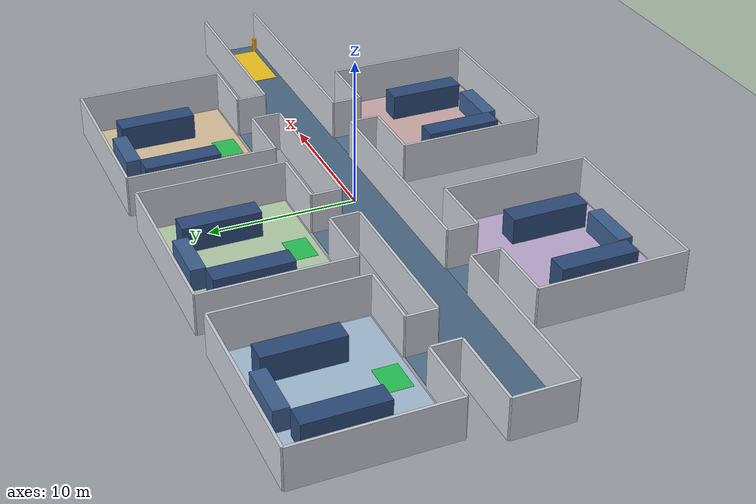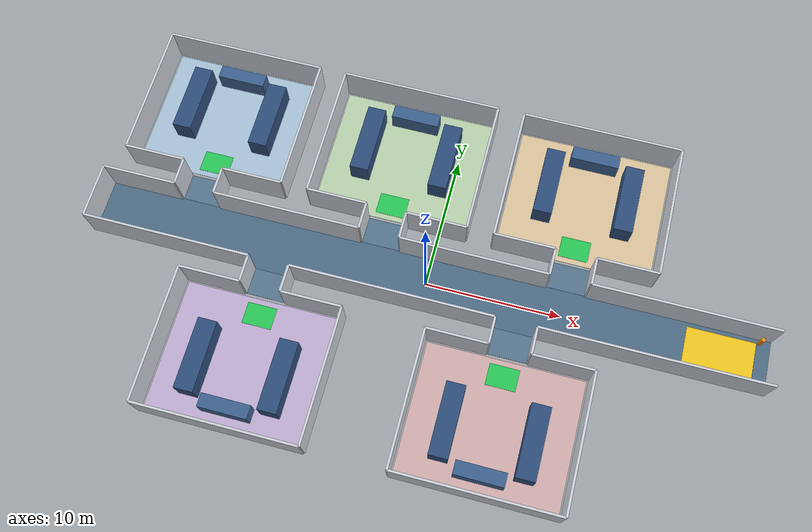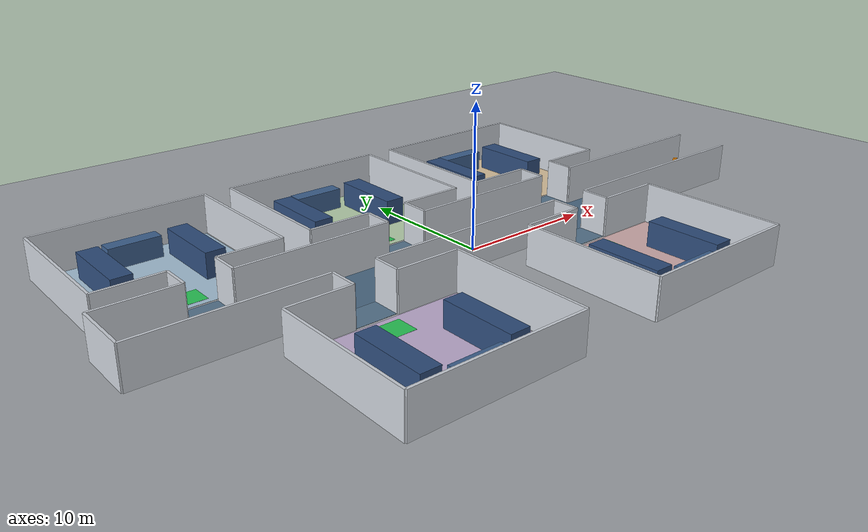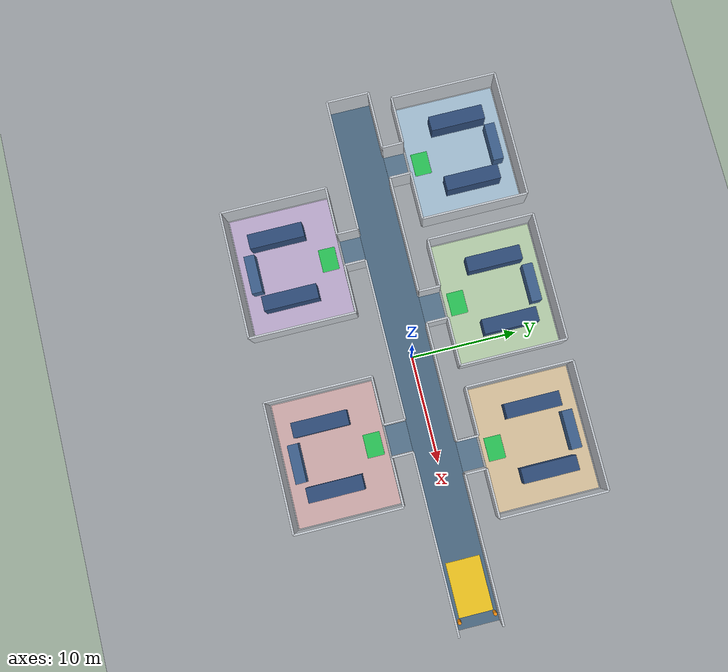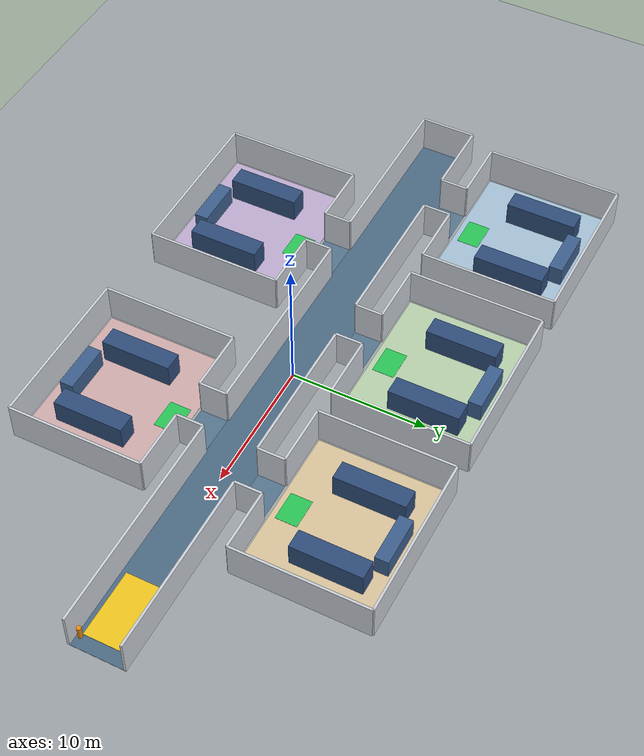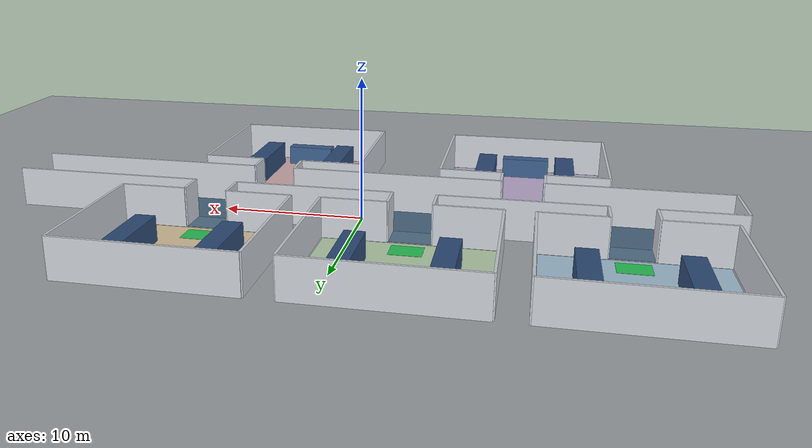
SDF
<sdf version="1.10">
 <world name="warehouse_5_rooms">
  <physics name="1ms" type="ignored">
   <max_step_size>0.001</max_step_size>
   <real_time_factor>1</real_time_factor>
   <real_time_update_rate>1000</real_time_update_rate>
  </physics>
  <plugin name="gz::sim::systems::Physics" filename="gz-sim-physics-system"/>
  <plugin name="gz::sim::systems::UserCommands" filename="gz-sim-user-commands-system"/>
  <plugin name="gz::sim::systems::SceneBroadcaster" filename="gz-sim-scene-broadcaster-system"/>
  <plugin name="gz::sim::systems::Contact" filename="gz-sim-contact-system"/>
  <plugin name="gz::sim::systems::Sensors" filename="gz-sim-sensors-system">
   <render_engine>ogre2</render_engine>
  </plugin>
  <plugin name="gz::sim::systems::Imu" filename="gz-sim-imu-system"/>
  <gravity>0 0 -9.8</gravity>
  <magnetic_field>5.5645e-06 2.28758e-05 -4.23884e-05</magnetic_field>
  <atmosphere type="adiabatic"/>
  <scene>
   <ambient>0.45 0.45 0.45 1</ambient>
   <background>0.72 0.74 0.78 1</background>
   <shadows>true</shadows>
  </scene>
  <model name="ground_plane">
   <static>true</static>
   <link name="link">
    <collision name="collision">
     <geometry><plane><normal>0 0 1</normal><size>80 50</size></plane></geometry>
     <surface><friction><ode><mu>50</mu><mu2>50</mu2></ode></friction></surface>
    </collision>
    <visual name="visual">
     <geometry><plane><normal>0 0 1</normal><size>80 50</size></plane></geometry>
     <material><ambient>0.58 0.60 0.62 1</ambient><diffuse>0.62 0.64 0.66 1</diffuse></material>
    </visual>
   </link>
  </model>
  <model name="warehouse_floor_zones">
   <static>true</static>
   <link name="floor_zones_link">
    <visual name="main_corridor_floor_visual">
     <pose>0.0000 0.0000 0.0150 0 0 0</pose>
     <geometry><box><size>50.0000 4.0000 0.0200</size></box></geometry>
     <material><ambient>0.30 0.42 0.52 1</ambient><diffuse>0.30 0.42 0.52 1</diffuse></material>
    </visual>
    <visual name="room_1_floor_visual">
     <pose>-18.0000 9.0000 0.0150 0 0 0</pose>
     <geometry><box><size>11.6000 9.6000 0.0200</size></box></geometry>
     <material><ambient>0.65 0.76 0.84 1</ambient><diffuse>0.65 0.76 0.84 1</diffuse></material>
    </visual>
    <visual name="room_1_branch_floor_visual">
     <pose>-18.0000 3.0000 0.0170 0 0 0</pose>
     <geometry><box><size>3.0000 2.0000 0.0240</size></box></geometry>
     <material><ambient>0.34 0.46 0.56 1</ambient><diffuse>0.34 0.46 0.56 1</diffuse></material>
    </visual>
    <visual name="room_1_goal_zone_visual">
     <pose>-18.0000 5.4000 0.0250 0 0 0</pose>
     <geometry><box><size>2.2000 1.6000 0.0350</size></box></geometry>
     <material><ambient>0.16 0.78 0.34 1</ambient><diffuse>0.16 0.78 0.34 1</diffuse></material>
    </visual>
    <visual name="room_2_floor_visual">
     <pose>-4.0000 9.0000 0.0150 0 0 0</pose>
     <geometry><box><size>11.6000 9.6000 0.0200</size></box></geometry>
     <material><ambient>0.72 0.82 0.68 1</ambient><diffuse>0.72 0.82 0.68 1</diffuse></material>
    </visual>
    <visual name="room_2_branch_floor_visual">
     <pose>-4.0000 3.0000 0.0170 0 0 0</pose>
     <geometry><box><size>3.0000 2.0000 0.0240</size></box></geometry>
     <material><ambient>0.34 0.46 0.56 1</ambient><diffuse>0.34 0.46 0.56 1</diffuse></material>
    </visual>
    <visual name="room_2_goal_zone_visual">
     <pose>-4.0000 5.4000 0.0250 0 0 0</pose>
     <geometry><box><size>2.2000 1.6000 0.0350</size></box></geometry>
     <material><ambient>0.16 0.78 0.34 1</ambient><diffuse>0.16 0.78 0.34 1</diffuse></material>
    </visual>
    <visual name="room_3_floor_visual">
     <pose>10.0000 9.0000 0.0150 0 0 0</pose>
     <geometry><box><size>11.6000 9.6000 0.0200</size></box></geometry>
     <material><ambient>0.86 0.77 0.62 1</ambient><diffuse>0.86 0.77 0.62 1</diffuse></material>
    </visual>
    <visual name="room_3_branch_floor_visual">
     <pose>10.0000 3.0000 0.0170 0 0 0</pose>
     <geometry><box><size>3.0000 2.0000 0.0240</size></box></geometry>
     <material><ambient>0.34 0.46 0.56 1</ambient><diffuse>0.34 0.46 0.56 1</diffuse></material>
    </visual>
    <visual name="room_3_goal_zone_visual">
     <pose>10.0000 5.4000 0.0250 0 0 0</pose>
     <geometry><box><size>2.2000 1.6000 0.0350</size></box></geometry>
     <material><ambient>0.16 0.78 0.34 1</ambient><diffuse>0.16 0.78 0.34 1</diffuse></material>
    </visual>
    <visual name="room_4_floor_visual">
     <pose>-11.0000 -9.0000 0.0150 0 0 0</pose>
     <geometry><box><size>11.6000 9.6000 0.0200</size></box></geometry>
     <material><ambient>0.75 0.68 0.82 1</ambient><diffuse>0.75 0.68 0.82 1</diffuse></material>
    </visual>
    <visual name="room_4_branch_floor_visual">
     <pose>-11.0000 -3.0000 0.0170 0 0 0</pose>
     <geometry><box><size>3.0000 2.0000 0.0240</size></box></geometry>
     <material><ambient>0.34 0.46 0.56 1</ambient><diffuse>0.34 0.46 0.56 1</diffuse></material>
    </visual>
    <visual name="room_4_goal_zone_visual">
     <pose>-11.0000 -5.4000 0.0250 0 0 0</pose>
     <geometry><box><size>2.2000 1.6000 0.0350</size></box></geometry>
     <material><ambient>0.16 0.78 0.34 1</ambient><diffuse>0.16 0.78 0.34 1</diffuse></material>
    </visual>
    <visual name="room_5_floor_visual">
     <pose>7.0000 -9.0000 0.0150 0 0 0</pose>
     <geometry><box><size>11.6000 9.6000 0.0200</size></box></geometry>
     <material><ambient>0.82 0.68 0.68 1</ambient><diffuse>0.82 0.68 0.68 1</diffuse></material>
    </visual>
    <visual name="room_5_branch_floor_visual">
     <pose>7.0000 -3.0000 0.0170 0 0 0</pose>
     <geometry><box><size>3.0000 2.0000 0.0240</size></box></geometry>
     <material><ambient>0.34 0.46 0.56 1</ambient><diffuse>0.34 0.46 0.56 1</diffuse></material>
    </visual>
    <visual name="room_5_goal_zone_visual">
     <pose>7.0000 -5.4000 0.0250 0 0 0</pose>
     <geometry><box><size>2.2000 1.6000 0.0350</size></box></geometry>
     <material><ambient>0.16 0.78 0.34 1</ambient><diffuse>0.16 0.78 0.34 1</diffuse></material>
    </visual>
    <visual name="agv_start_zone_visual">
     <pose>21.5000 0.0000 0.0260 0 0 0</pose>
     <geometry><box><size>5.0000 3.2000 0.0400</size></box></geometry>
     <material><ambient>0.95 0.78 0.12 1</ambient><diffuse>0.95 0.78 0.12 1</diffuse></material>
    </visual>
   </link>
  </model>
  <model name="warehouse_structure">
   <static>true</static>
   <link name="walls_link">
    <collision name="corridor_north_1_collision">
     <pose>-22.2500 2.0000 1.4000 0 0 0</pose>
     <geometry><box><size>5.5000 0.1800 2.8000</size></box></geometry>
    </collision>
    <visual name="corridor_north_1_visual">
     <pose>-22.2500 2.0000 1.4000 0 0 0</pose>
     <geometry><box><size>5.5000 0.1800 2.8000</size></box></geometry>
     <material><ambient>0.80 0.82 0.85 1</ambient><diffuse>0.80 0.82 0.85 1</diffuse></material>
    </visual>
    <collision name="corridor_north_2_collision">
     <pose>-11.0000 2.0000 1.4000 0 0 0</pose>
     <geometry><box><size>11.0000 0.1800 2.8000</size></box></geometry>
    </collision>
    <visual name="corridor_north_2_visual">
     <pose>-11.0000 2.0000 1.4000 0 0 0</pose>
     <geometry><box><size>11.0000 0.1800 2.8000</size></box></geometry>
     <material><ambient>0.80 0.82 0.85 1</ambient><diffuse>0.80 0.82 0.85 1</diffuse></material>
    </visual>
    <collision name="corridor_north_3_collision">
     <pose>3.0000 2.0000 1.4000 0 0 0</pose>
     <geometry><box><size>11.0000 0.1800 2.8000</size></box></geometry>
    </collision>
    <visual name="corridor_north_3_visual">
     <pose>3.0000 2.0000 1.4000 0 0 0</pose>
     <geometry><box><size>11.0000 0.1800 2.8000</size></box></geometry>
     <material><ambient>0.80 0.82 0.85 1</ambient><diffuse>0.80 0.82 0.85 1</diffuse></material>
    </visual>
    <collision name="corridor_north_4_collision">
     <pose>18.2500 2.0000 1.4000 0 0 0</pose>
     <geometry><box><size>13.5000 0.1800 2.8000</size></box></geometry>
    </collision>
    <visual name="corridor_north_4_visual">
     <pose>18.2500 2.0000 1.4000 0 0 0</pose>
     <geometry><box><size>13.5000 0.1800 2.8000</size></box></geometry>
     <material><ambient>0.80 0.82 0.85 1</ambient><diffuse>0.80 0.82 0.85 1</diffuse></material>
    </visual>
    <collision name="corridor_south_1_collision">
     <pose>-18.7500 -2.0000 1.4000 0 0 0</pose>
     <geometry><box><size>12.5000 0.1800 2.8000</size></box></geometry>
    </collision>
    <visual name="corridor_south_1_visual">
     <pose>-18.7500 -2.0000 1.4000 0 0 0</pose>
     <geometry><box><size>12.5000 0.1800 2.8000</size></box></geometry>
     <material><ambient>0.80 0.82 0.85 1</ambient><diffuse>0.80 0.82 0.85 1</diffuse></material>
    </visual>
    <collision name="corridor_south_2_collision">
     <pose>-2.0000 -2.0000 1.4000 0 0 0</pose>
     <geometry><box><size>15.0000 0.1800 2.8000</size></box></geometry>
    </collision>
    <visual name="corridor_south_2_visual">
     <pose>-2.0000 -2.0000 1.4000 0 0 0</pose>
     <geometry><box><size>15.0000 0.1800 2.8000</size></box></geometry>
     <material><ambient>0.80 0.82 0.85 1</ambient><diffuse>0.80 0.82 0.85 1</diffuse></material>
    </visual>
    <collision name="corridor_south_3_collision">
     <pose>16.7500 -2.0000 1.4000 0 0 0</pose>
     <geometry><box><size>16.5000 0.1800 2.8000</size></box></geometry>
    </collision>
    <visual name="corridor_south_3_visual">
     <pose>16.7500 -2.0000 1.4000 0 0 0</pose>
     <geometry><box><size>16.5000 0.1800 2.8000</size></box></geometry>
     <material><ambient>0.80 0.82 0.85 1</ambient><diffuse>0.80 0.82 0.85 1</diffuse></material>
    </visual>
    <collision name="corridor_west_end_collision">
     <pose>-25.0000 0.0000 1.4000 0 0 0</pose>
     <geometry><box><size>0.1800 4.0000 2.8000</size></box></geometry>
    </collision>
    <visual name="corridor_west_end_visual">
     <pose>-25.0000 0.0000 1.4000 0 0 0</pose>
     <geometry><box><size>0.1800 4.0000 2.8000</size></box></geometry>
     <material><ambient>0.80 0.82 0.85 1</ambient><diffuse>0.80 0.82 0.85 1</diffuse></material>
    </visual>
    <collision name="room_1_west_collision">
     <pose>-24.0000 9.0000 1.4000 0 0 0</pose>
     <geometry><box><size>0.1800 10.0000 2.8000</size></box></geometry>
    </collision>
    <visual name="room_1_west_visual">
     <pose>-24.0000 9.0000 1.4000 0 0 0</pose>
     <geometry><box><size>0.1800 10.0000 2.8000</size></box></geometry>
     <material><ambient>0.80 0.82 0.85 1</ambient><diffuse>0.80 0.82 0.85 1</diffuse></material>
    </visual>
    <collision name="room_1_east_collision">
     <pose>-12.0000 9.0000 1.4000 0 0 0</pose>
     <geometry><box><size>0.1800 10.0000 2.8000</size></box></geometry>
    </collision>
    <visual name="room_1_east_visual">
     <pose>-12.0000 9.0000 1.4000 0 0 0</pose>
     <geometry><box><size>0.1800 10.0000 2.8000</size></box></geometry>
     <material><ambient>0.80 0.82 0.85 1</ambient><diffuse>0.80 0.82 0.85 1</diffuse></material>
    </visual>
    <collision name="room_1_north_collision">
     <pose>-18.0000 14.0000 1.4000 0 0 0</pose>
     <geometry><box><size>12.0000 0.1800 2.8000</size></box></geometry>
    </collision>
    <visual name="room_1_north_visual">
     <pose>-18.0000 14.0000 1.4000 0 0 0</pose>
     <geometry><box><size>12.0000 0.1800 2.8000</size></box></geometry>
     <material><ambient>0.80 0.82 0.85 1</ambient><diffuse>0.80 0.82 0.85 1</diffuse></material>
    </visual>
    <collision name="room_1_south_left_collision">
     <pose>-21.7500 4.0000 1.4000 0 0 0</pose>
     <geometry><box><size>4.5000 0.1800 2.8000</size></box></geometry>
    </collision>
    <visual name="room_1_south_left_visual">
     <pose>-21.7500 4.0000 1.4000 0 0 0</pose>
     <geometry><box><size>4.5000 0.1800 2.8000</size></box></geometry>
     <material><ambient>0.80 0.82 0.85 1</ambient><diffuse>0.80 0.82 0.85 1</diffuse></material>
    </visual>
    <collision name="room_1_south_right_collision">
     <pose>-14.2500 4.0000 1.4000 0 0 0</pose>
     <geometry><box><size>4.5000 0.1800 2.8000</size></box></geometry>
    </collision>
    <visual name="room_1_south_right_visual">
     <pose>-14.2500 4.0000 1.4000 0 0 0</pose>
     <geometry><box><size>4.5000 0.1800 2.8000</size></box></geometry>
     <material><ambient>0.80 0.82 0.85 1</ambient><diffuse>0.80 0.82 0.85 1</diffuse></material>
    </visual>
    <collision name="room_1_branch_west_collision">
     <pose>-19.5000 3.0000 1.4000 0 0 0</pose>
     <geometry><box><size>0.1800 2.0000 2.8000</size></box></geometry>
    </collision>
    <visual name="room_1_branch_west_visual">
     <pose>-19.5000 3.0000 1.4000 0 0 0</pose>
     <geometry><box><size>0.1800 2.0000 2.8000</size></box></geometry>
     <material><ambient>0.80 0.82 0.85 1</ambient><diffuse>0.80 0.82 0.85 1</diffuse></material>
    </visual>
    <collision name="room_1_branch_east_collision">
     <pose>-16.5000 3.0000 1.4000 0 0 0</pose>
     <geometry><box><size>0.1800 2.0000 2.8000</size></box></geometry>
    </collision>
    <visual name="room_1_branch_east_visual">
     <pose>-16.5000 3.0000 1.4000 0 0 0</pose>
     <geometry><box><size>0.1800 2.0000 2.8000</size></box></geometry>
     <material><ambient>0.80 0.82 0.85 1</ambient><diffuse>0.80 0.82 0.85 1</diffuse></material>
    </visual>
    <collision name="room_2_west_collision">
     <pose>-10.0000 9.0000 1.4000 0 0 0</pose>
     <geometry><box><size>0.1800 10.0000 2.8000</size></box></geometry>
    </collision>
    <visual name="room_2_west_visual">
     <pose>-10.0000 9.0000 1.4000 0 0 0</pose>
     <geometry><box><size>0.1800 10.0000 2.8000</size></box></geometry>
     <material><ambient>0.80 0.82 0.85 1</ambient><diffuse>0.80 0.82 0.85 1</diffuse></material>
    </visual>
    <collision name="room_2_east_collision">
     <pose>2.0000 9.0000 1.4000 0 0 0</pose>
     <geometry><box><size>0.1800 10.0000 2.8000</size></box></geometry>
    </collision>
    <visual name="room_2_east_visual">
     <pose>2.0000 9.0000 1.4000 0 0 0</pose>
     <geometry><box><size>0.1800 10.0000 2.8000</size></box></geometry>
     <material><ambient>0.80 0.82 0.85 1</ambient><diffuse>0.80 0.82 0.85 1</diffuse></material>
    </visual>
    <collision name="room_2_north_collision">
     <pose>-4.0000 14.0000 1.4000 0 0 0</pose>
     <geometry><box><size>12.0000 0.1800 2.8000</size></box></geometry>
    </collision>
    <visual name="room_2_north_visual">
     <pose>-4.0000 14.0000 1.4000 0 0 0</pose>
     <geometry><box><size>12.0000 0.1800 2.8000</size></box></geometry>
     <material><ambient>0.80 0.82 0.85 1</ambient><diffuse>0.80 0.82 0.85 1</diffuse></material>
    </visual>
    <collision name="room_2_south_left_collision">
     <pose>-7.7500 4.0000 1.4000 0 0 0</pose>
     <geometry><box><size>4.5000 0.1800 2.8000</size></box></geometry>
    </collision>
    <visual name="room_2_south_left_visual">
     <pose>-7.7500 4.0000 1.4000 0 0 0</pose>
     <geometry><box><size>4.5000 0.1800 2.8000</size></box></geometry>
     <material><ambient>0.80 0.82 0.85 1</ambient><diffuse>0.80 0.82 0.85 1</diffuse></material>
    </visual>
    <collision name="room_2_south_right_collision">
     <pose>-0.2500 4.0000 1.4000 0 0 0</pose>
     <geometry><box><size>4.5000 0.1800 2.8000</size></box></geometry>
    </collision>
    <visual name="room_2_south_right_visual">
     <pose>-0.2500 4.0000 1.4000 0 0 0</pose>
     <geometry><box><size>4.5000 0.1800 2.8000</size></box></geometry>
     <material><ambient>0.80 0.82 0.85 1</ambient><diffuse>0.80 0.82 0.85 1</diffuse></material>
    </visual>
    <collision name="room_2_branch_west_collision">
     <pose>-5.5000 3.0000 1.4000 0 0 0</pose>
     <geometry><box><size>0.1800 2.0000 2.8000</size></box></geometry>
    </collision>
    <visual name="room_2_branch_west_visual">
     <pose>-5.5000 3.0000 1.4000 0 0 0</pose>
     <geometry><box><size>0.1800 2.0000 2.8000</size></box></geometry>
     <material><ambient>0.80 0.82 0.85 1</ambient><diffuse>0.80 0.82 0.85 1</diffuse></material>
    </visual>
    <collision name="room_2_branch_east_collision">
     <pose>-2.5000 3.0000 1.4000 0 0 0</pose>
     <geometry><box><size>0.1800 2.0000 2.8000</size></box></geometry>
    </collision>
    <visual name="room_2_branch_east_visual">
     <pose>-2.5000 3.0000 1.4000 0 0 0</pose>
     <geometry><box><size>0.1800 2.0000 2.8000</size></box></geometry>
     <material><ambient>0.80 0.82 0.85 1</ambient><diffuse>0.80 0.82 0.85 1</diffuse></material>
    </visual>
    <collision name="room_3_west_collision">
     <pose>4.0000 9.0000 1.4000 0 0 0</pose>
     <geometry><box><size>0.1800 10.0000 2.8000</size></box></geometry>
    </collision>
    <visual name="room_3_west_visual">
     <pose>4.0000 9.0000 1.4000 0 0 0</pose>
     <geometry><box><size>0.1800 10.0000 2.8000</size></box></geometry>
     <material><ambient>0.80 0.82 0.85 1</ambient><diffuse>0.80 0.82 0.85 1</diffuse></material>
    </visual>
    <collision name="room_3_east_collision">
     <pose>16.0000 9.0000 1.4000 0 0 0</pose>
     <geometry><box><size>0.1800 10.0000 2.8000</size></box></geometry>
    </collision>
    <visual name="room_3_east_visual">
     <pose>16.0000 9.0000 1.4000 0 0 0</pose>
     <geometry><box><size>0.1800 10.0000 2.8000</size></box></geometry>
     <material><ambient>0.80 0.82 0.85 1</ambient><diffuse>0.80 0.82 0.85 1</diffuse></material>
    </visual>
    <collision name="room_3_north_collision">
     <pose>10.0000 14.0000 1.4000 0 0 0</pose>
     <geometry><box><size>12.0000 0.1800 2.8000</size></box></geometry>
    </collision>
    <visual name="room_3_north_visual">
     <pose>10.0000 14.0000 1.4000 0 0 0</pose>
     <geometry><box><size>12.0000 0.1800 2.8000</size></box></geometry>
     <material><ambient>0.80 0.82 0.85 1</ambient><diffuse>0.80 0.82 0.85 1</diffuse></material>
    </visual>
    <collision name="room_3_south_left_collision">
     <pose>6.2500 4.0000 1.4000 0 0 0</pose>
     <geometry><box><size>4.5000 0.1800 2.8000</size></box></geometry>
    </collision>
    <visual name="room_3_south_left_visual">
     <pose>6.2500 4.0000 1.4000 0 0 0</pose>
     <geometry><box><size>4.5000 0.1800 2.8000</size></box></geometry>
     <material><ambient>0.80 0.82 0.85 1</ambient><diffuse>0.80 0.82 0.85 1</diffuse></material>
    </visual>
    <collision name="room_3_south_right_collision">
     <pose>13.7500 4.0000 1.4000 0 0 0</pose>
     <geometry><box><size>4.5000 0.1800 2.8000</size></box></geometry>
    </collision>
    <visual name="room_3_south_right_visual">
     <pose>13.7500 4.0000 1.4000 0 0 0</pose>
     <geometry><box><size>4.5000 0.1800 2.8000</size></box></geometry>
     <material><ambient>0.80 0.82 0.85 1</ambient><diffuse>0.80 0.82 0.85 1</diffuse></material>
    </visual>
    <collision name="room_3_branch_west_collision">
     <pose>8.5000 3.0000 1.4000 0 0 0</pose>
     <geometry><box><size>0.1800 2.0000 2.8000</size></box></geometry>
    </collision>
    <visual name="room_3_branch_west_visual">
     <pose>8.5000 3.0000 1.4000 0 0 0</pose>
     <geometry><box><size>0.1800 2.0000 2.8000</size></box></geometry>
     <material><ambient>0.80 0.82 0.85 1</ambient><diffuse>0.80 0.82 0.85 1</diffuse></material>
    </visual>
    <collision name="room_3_branch_east_collision">
     <pose>11.5000 3.0000 1.4000 0 0 0</pose>
     <geometry><box><size>0.1800 2.0000 2.8000</size></box></geometry>
    </collision>
    <visual name="room_3_branch_east_visual">
     <pose>11.5000 3.0000 1.4000 0 0 0</pose>
     <geometry><box><size>0.1800 2.0000 2.8000</size></box></geometry>
     <material><ambient>0.80 0.82 0.85 1</ambient><diffuse>0.80 0.82 0.85 1</diffuse></material>
    </visual>
    <collision name="room_4_west_collision">
     <pose>-17.0000 -9.0000 1.4000 0 0 0</pose>
     <geometry><box><size>0.1800 10.0000 2.8000</size></box></geometry>
    </collision>
    <visual name="room_4_west_visual">
     <pose>-17.0000 -9.0000 1.4000 0 0 0</pose>
     <geometry><box><size>0.1800 10.0000 2.8000</size></box></geometry>
     <material><ambient>0.80 0.82 0.85 1</ambient><diffuse>0.80 0.82 0.85 1</diffuse></material>
    </visual>
    <collision name="room_4_east_collision">
     <pose>-5.0000 -9.0000 1.4000 0 0 0</pose>
     <geometry><box><size>0.1800 10.0000 2.8000</size></box></geometry>
    </collision>
    <visual name="room_4_east_visual">
     <pose>-5.0000 -9.0000 1.4000 0 0 0</pose>
     <geometry><box><size>0.1800 10.0000 2.8000</size></box></geometry>
     <material><ambient>0.80 0.82 0.85 1</ambient><diffuse>0.80 0.82 0.85 1</diffuse></material>
    </visual>
    <collision name="room_4_south_collision">
     <pose>-11.0000 -14.0000 1.4000 0 0 0</pose>
     <geometry><box><size>12.0000 0.1800 2.8000</size></box></geometry>
    </collision>
    <visual name="room_4_south_visual">
     <pose>-11.0000 -14.0000 1.4000 0 0 0</pose>
     <geometry><box><size>12.0000 0.1800 2.8000</size></box></geometry>
     <material><ambient>0.80 0.82 0.85 1</ambient><diffuse>0.80 0.82 0.85 1</diffuse></material>
    </visual>
    <collision name="room_4_north_left_collision">
     <pose>-14.7500 -4.0000 1.4000 0 0 0</pose>
     <geometry><box><size>4.5000 0.1800 2.8000</size></box></geometry>
    </collision>
    <visual name="room_4_north_left_visual">
     <pose>-14.7500 -4.0000 1.4000 0 0 0</pose>
     <geometry><box><size>4.5000 0.1800 2.8000</size></box></geometry>
     <material><ambient>0.80 0.82 0.85 1</ambient><diffuse>0.80 0.82 0.85 1</diffuse></material>
    </visual>
    <collision name="room_4_north_right_collision">
     <pose>-7.2500 -4.0000 1.4000 0 0 0</pose>
     <geometry><box><size>4.5000 0.1800 2.8000</size></box></geometry>
    </collision>
    <visual name="room_4_north_right_visual">
     <pose>-7.2500 -4.0000 1.4000 0 0 0</pose>
     <geometry><box><size>4.5000 0.1800 2.8000</size></box></geometry>
     <material><ambient>0.80 0.82 0.85 1</ambient><diffuse>0.80 0.82 0.85 1</diffuse></material>
    </visual>
    <collision name="room_4_branch_west_collision">
     <pose>-12.5000 -3.0000 1.4000 0 0 0</pose>
     <geometry><box><size>0.1800 2.0000 2.8000</size></box></geometry>
    </collision>
    <visual name="room_4_branch_west_visual">
     <pose>-12.5000 -3.0000 1.4000 0 0 0</pose>
     <geometry><box><size>0.1800 2.0000 2.8000</size></box></geometry>
     <material><ambient>0.80 0.82 0.85 1</ambient><diffuse>0.80 0.82 0.85 1</diffuse></material>
    </visual>
    <collision name="room_4_branch_east_collision">
     <pose>-9.5000 -3.0000 1.4000 0 0 0</pose>
     <geometry><box><size>0.1800 2.0000 2.8000</size></box></geometry>
    </collision>
    <visual name="room_4_branch_east_visual">
     <pose>-9.5000 -3.0000 1.4000 0 0 0</pose>
     <geometry><box><size>0.1800 2.0000 2.8000</size></box></geometry>
     <material><ambient>0.80 0.82 0.85 1</ambient><diffuse>0.80 0.82 0.85 1</diffuse></material>
    </visual>
    <collision name="room_5_west_collision">
     <pose>1.0000 -9.0000 1.4000 0 0 0</pose>
     <geometry><box><size>0.1800 10.0000 2.8000</size></box></geometry>
    </collision>
    <visual name="room_5_west_visual">
     <pose>1.0000 -9.0000 1.4000 0 0 0</pose>
     <geometry><box><size>0.1800 10.0000 2.8000</size></box></geometry>
     <material><ambient>0.80 0.82 0.85 1</ambient><diffuse>0.80 0.82 0.85 1</diffuse></material>
    </visual>
    <collision name="room_5_east_collision">
     <pose>13.0000 -9.0000 1.4000 0 0 0</pose>
     <geometry><box><size>0.1800 10.0000 2.8000</size></box></geometry>
    </collision>
    <visual name="room_5_east_visual">
     <pose>13.0000 -9.0000 1.4000 0 0 0</pose>
     <geometry><box><size>0.1800 10.0000 2.8000</size></box></geometry>
     <material><ambient>0.80 0.82 0.85 1</ambient><diffuse>0.80 0.82 0.85 1</diffuse></material>
    </visual>
    <collision name="room_5_south_collision">
     <pose>7.0000 -14.0000 1.4000 0 0 0</pose>
     <geometry><box><size>12.0000 0.1800 2.8000</size></box></geometry>
    </collision>
    <visual name="room_5_south_visual">
     <pose>7.0000 -14.0000 1.4000 0 0 0</pose>
     <geometry><box><size>12.0000 0.1800 2.8000</size></box></geometry>
     <material><ambient>0.80 0.82 0.85 1</ambient><diffuse>0.80 0.82 0.85 1</diffuse></material>
    </visual>
    <collision name="room_5_north_left_collision">
     <pose>3.2500 -4.0000 1.4000 0 0 0</pose>
     <geometry><box><size>4.5000 0.1800 2.8000</size></box></geometry>
    </collision>
    <visual name="room_5_north_left_visual">
     <pose>3.2500 -4.0000 1.4000 0 0 0</pose>
     <geometry><box><size>4.5000 0.1800 2.8000</size></box></geometry>
     <material><ambient>0.80 0.82 0.85 1</ambient><diffuse>0.80 0.82 0.85 1</diffuse></material>
    </visual>
    <collision name="room_5_north_right_collision">
     <pose>10.7500 -4.0000 1.4000 0 0 0</pose>
     <geometry><box><size>4.5000 0.1800 2.8000</size></box></geometry>
    </collision>
    <visual name="room_5_north_right_visual">
     <pose>10.7500 -4.0000 1.4000 0 0 0</pose>
     <geometry><box><size>4.5000 0.1800 2.8000</size></box></geometry>
     <material><ambient>0.80 0.82 0.85 1</ambient><diffuse>0.80 0.82 0.85 1</diffuse></material>
    </visual>
    <collision name="room_5_branch_west_collision">
     <pose>5.5000 -3.0000 1.4000 0 0 0</pose>
     <geometry><box><size>0.1800 2.0000 2.8000</size></box></geometry>
    </collision>
    <visual name="room_5_branch_west_visual">
     <pose>5.5000 -3.0000 1.4000 0 0 0</pose>
     <geometry><box><size>0.1800 2.0000 2.8000</size></box></geometry>
     <material><ambient>0.80 0.82 0.85 1</ambient><diffuse>0.80 0.82 0.85 1</diffuse></material>
    </visual>
    <collision name="room_5_branch_east_collision">
     <pose>8.5000 -3.0000 1.4000 0 0 0</pose>
     <geometry><box><size>0.1800 2.0000 2.8000</size></box></geometry>
    </collision>
    <visual name="room_5_branch_east_visual">
     <pose>8.5000 -3.0000 1.4000 0 0 0</pose>
     <geometry><box><size>0.1800 2.0000 2.8000</size></box></geometry>
     <material><ambient>0.80 0.82 0.85 1</ambient><diffuse>0.80 0.82 0.85 1</diffuse></material>
    </visual>
   </link>
  </model>
  <model name="warehouse_racks">
   <static>true</static>
   <link name="racks_link">
    <collision name="room_1_rack_left_collision">
     <pose>-21.0000 9.6000 0.9000 0 0 0</pose>
     <geometry><box><size>1.4000 5.2000 1.8000</size></box></geometry>
    </collision>
    <visual name="room_1_rack_left_visual">
     <pose>-21.0000 9.6000 0.9000 0 0 0</pose>
     <geometry><box><size>1.4000 5.2000 1.8000</size></box></geometry>
     <material><ambient>0.18 0.30 0.48 1</ambient><diffuse>0.18 0.30 0.48 1</diffuse></material>
    </visual>
    <collision name="room_1_rack_right_collision">
     <pose>-15.0000 9.6000 0.9000 0 0 0</pose>
     <geometry><box><size>1.4000 5.2000 1.8000</size></box></geometry>
    </collision>
    <visual name="room_1_rack_right_visual">
     <pose>-15.0000 9.6000 0.9000 0 0 0</pose>
     <geometry><box><size>1.4000 5.2000 1.8000</size></box></geometry>
     <material><ambient>0.18 0.30 0.48 1</ambient><diffuse>0.18 0.30 0.48 1</diffuse></material>
    </visual>
    <collision name="room_1_rack_back_collision">
     <pose>-18.0000 12.5000 0.7500 0 0 0</pose>
     <geometry><box><size>3.6000 1.0000 1.5000</size></box></geometry>
    </collision>
    <visual name="room_1_rack_back_visual">
     <pose>-18.0000 12.5000 0.7500 0 0 0</pose>
     <geometry><box><size>3.6000 1.0000 1.5000</size></box></geometry>
     <material><ambient>0.24 0.38 0.56 1</ambient><diffuse>0.24 0.38 0.56 1</diffuse></material>
    </visual>
    <collision name="room_2_rack_left_collision">
     <pose>-7.0000 9.6000 0.9000 0 0 0</pose>
     <geometry><box><size>1.4000 5.2000 1.8000</size></box></geometry>
    </collision>
    <visual name="room_2_rack_left_visual">
     <pose>-7.0000 9.6000 0.9000 0 0 0</pose>
     <geometry><box><size>1.4000 5.2000 1.8000</size></box></geometry>
     <material><ambient>0.18 0.30 0.48 1</ambient><diffuse>0.18 0.30 0.48 1</diffuse></material>
    </visual>
    <collision name="room_2_rack_right_collision">
     <pose>-1.0000 9.6000 0.9000 0 0 0</pose>
     <geometry><box><size>1.4000 5.2000 1.8000</size></box></geometry>
    </collision>
    <visual name="room_2_rack_right_visual">
     <pose>-1.0000 9.6000 0.9000 0 0 0</pose>
     <geometry><box><size>1.4000 5.2000 1.8000</size></box></geometry>
     <material><ambient>0.18 0.30 0.48 1</ambient><diffuse>0.18 0.30 0.48 1</diffuse></material>
    </visual>
    <collision name="room_2_rack_back_collision">
     <pose>-4.0000 12.5000 0.7500 0 0 0</pose>
     <geometry><box><size>3.6000 1.0000 1.5000</size></box></geometry>
    </collision>
    <visual name="room_2_rack_back_visual">
     <pose>-4.0000 12.5000 0.7500 0 0 0</pose>
     <geometry><box><size>3.6000 1.0000 1.5000</size></box></geometry>
     <material><ambient>0.24 0.38 0.56 1</ambient><diffuse>0.24 0.38 0.56 1</diffuse></material>
    </visual>
    <collision name="room_3_rack_left_collision">
     <pose>7.0000 9.6000 0.9000 0 0 0</pose>
     <geometry><box><size>1.4000 5.2000 1.8000</size></box></geometry>
    </collision>
    <visual name="room_3_rack_left_visual">
     <pose>7.0000 9.6000 0.9000 0 0 0</pose>
     <geometry><box><size>1.4000 5.2000 1.8000</size></box></geometry>
     <material><ambient>0.18 0.30 0.48 1</ambient><diffuse>0.18 0.30 0.48 1</diffuse></material>
    </visual>
    <collision name="room_3_rack_right_collision">
     <pose>13.0000 9.6000 0.9000 0 0 0</pose>
     <geometry><box><size>1.4000 5.2000 1.8000</size></box></geometry>
    </collision>
    <visual name="room_3_rack_right_visual">
     <pose>13.0000 9.6000 0.9000 0 0 0</pose>
     <geometry><box><size>1.4000 5.2000 1.8000</size></box></geometry>
     <material><ambient>0.18 0.30 0.48 1</ambient><diffuse>0.18 0.30 0.48 1</diffuse></material>
    </visual>
    <collision name="room_3_rack_back_collision">
     <pose>10.0000 12.5000 0.7500 0 0 0</pose>
     <geometry><box><size>3.6000 1.0000 1.5000</size></box></geometry>
    </collision>
    <visual name="room_3_rack_back_visual">
     <pose>10.0000 12.5000 0.7500 0 0 0</pose>
     <geometry><box><size>3.6000 1.0000 1.5000</size></box></geometry>
     <material><ambient>0.24 0.38 0.56 1</ambient><diffuse>0.24 0.38 0.56 1</diffuse></material>
    </visual>
    <collision name="room_4_rack_left_collision">
     <pose>-14.0000 -9.6000 0.9000 0 0 0</pose>
     <geometry><box><size>1.4000 5.2000 1.8000</size></box></geometry>
    </collision>
    <visual name="room_4_rack_left_visual">
     <pose>-14.0000 -9.6000 0.9000 0 0 0</pose>
     <geometry><box><size>1.4000 5.2000 1.8000</size></box></geometry>
     <material><ambient>0.18 0.30 0.48 1</ambient><diffuse>0.18 0.30 0.48 1</diffuse></material>
    </visual>
    <collision name="room_4_rack_right_collision">
     <pose>-8.0000 -9.6000 0.9000 0 0 0</pose>
     <geometry><box><size>1.4000 5.2000 1.8000</size></box></geometry>
    </collision>
    <visual name="room_4_rack_right_visual">
     <pose>-8.0000 -9.6000 0.9000 0 0 0</pose>
     <geometry><box><size>1.4000 5.2000 1.8000</size></box></geometry>
     <material><ambient>0.18 0.30 0.48 1</ambient><diffuse>0.18 0.30 0.48 1</diffuse></material>
    </visual>
    <collision name="room_4_rack_back_collision">
     <pose>-11.0000 -12.5000 0.7500 0 0 0</pose>
     <geometry><box><size>3.6000 1.0000 1.5000</size></box></geometry>
    </collision>
    <visual name="room_4_rack_back_visual">
     <pose>-11.0000 -12.5000 0.7500 0 0 0</pose>
     <geometry><box><size>3.6000 1.0000 1.5000</size></box></geometry>
     <material><ambient>0.24 0.38 0.56 1</ambient><diffuse>0.24 0.38 0.56 1</diffuse></material>
    </visual>
    <collision name="room_5_rack_left_collision">
     <pose>4.0000 -9.6000 0.9000 0 0 0</pose>
     <geometry><box><size>1.4000 5.2000 1.8000</size></box></geometry>
    </collision>
    <visual name="room_5_rack_left_visual">
     <pose>4.0000 -9.6000 0.9000 0 0 0</pose>
     <geometry><box><size>1.4000 5.2000 1.8000</size></box></geometry>
     <material><ambient>0.18 0.30 0.48 1</ambient><diffuse>0.18 0.30 0.48 1</diffuse></material>
    </visual>
    <collision name="room_5_rack_right_collision">
     <pose>10.0000 -9.6000 0.9000 0 0 0</pose>
     <geometry><box><size>1.4000 5.2000 1.8000</size></box></geometry>
    </collision>
    <visual name="room_5_rack_right_visual">
     <pose>10.0000 -9.6000 0.9000 0 0 0</pose>
     <geometry><box><size>1.4000 5.2000 1.8000</size></box></geometry>
     <material><ambient>0.18 0.30 0.48 1</ambient><diffuse>0.18 0.30 0.48 1</diffuse></material>
    </visual>
    <collision name="room_5_rack_back_collision">
     <pose>7.0000 -12.5000 0.7500 0 0 0</pose>
     <geometry><box><size>3.6000 1.0000 1.5000</size></box></geometry>
    </collision>
    <visual name="room_5_rack_back_visual">
     <pose>7.0000 -12.5000 0.7500 0 0 0</pose>
     <geometry><box><size>3.6000 1.0000 1.5000</size></box></geometry>
     <material><ambient>0.24 0.38 0.56 1</ambient><diffuse>0.24 0.38 0.56 1</diffuse></material>
    </visual>
   </link>
  </model>
  <model name="loading_bollards">
   <static>true</static>
   <link name="bollards_link">
    <collision name="bollard_1_collision">
     <pose>24.2 -1.65 0.5 0 0 0</pose>
     <geometry><cylinder><radius>0.16</radius><length>1.0</length></cylinder></geometry>
    </collision>
    <visual name="bollard_1_visual">
     <pose>24.2 -1.65 0.5 0 0 0</pose>
     <geometry><cylinder><radius>0.16</radius><length>1.0</length></cylinder></geometry>
     <material><ambient>0.95 0.55 0.05 1</ambient><diffuse>0.95 0.55 0.05 1</diffuse></material>
    </visual>
    <collision name="bollard_2_collision">
     <pose>24.2 1.65 0.5 0 0 0</pose>
     <geometry><cylinder><radius>0.16</radius><length>1.0</length></cylinder></geometry>
    </collision>
    <visual name="bollard_2_visual">
     <pose>24.2 1.65 0.5 0 0 0</pose>
     <geometry><cylinder><radius>0.16</radius><length>1.0</length></cylinder></geometry>
     <material><ambient>0.95 0.55 0.05 1</ambient><diffuse>0.95 0.55 0.05 1</diffuse></material>
    </visual>
   </link>
  </model>
  <light name="sun" type="directional">
   <pose>0 0 20 0 0 0</pose>
   <intensity>1</intensity>
   <direction>-0.5 0.1 -0.9</direction>
   <diffuse>0.85 0.85 0.85 1</diffuse>
   <specular>0.2 0.2 0.2 1</specular>
   <attenuation>
    <range>1000</range>
    <linear>0.01</linear>
    <constant>0.9</constant>
    <quadratic>0.001</quadratic>
   </attenuation>
  </light>
 </world>
</sdf>
